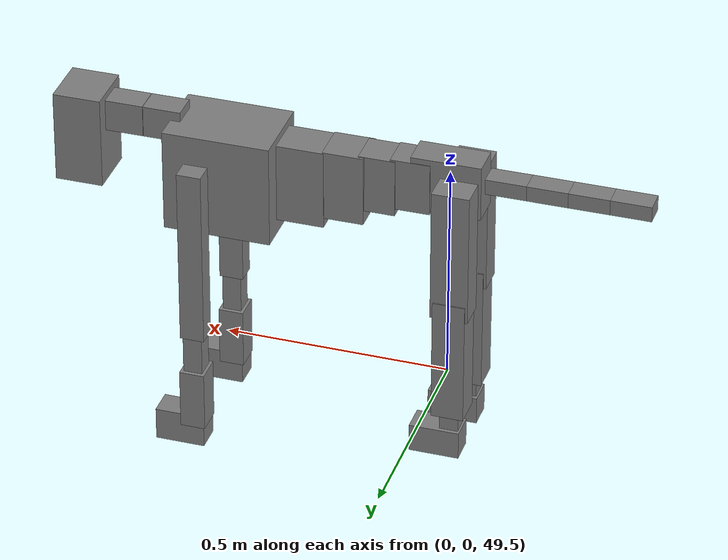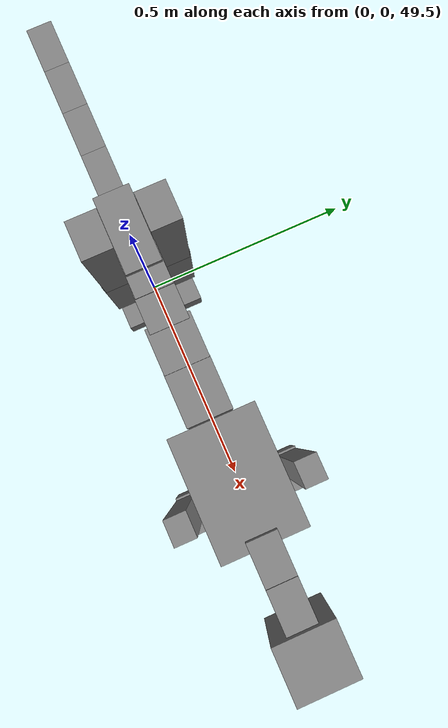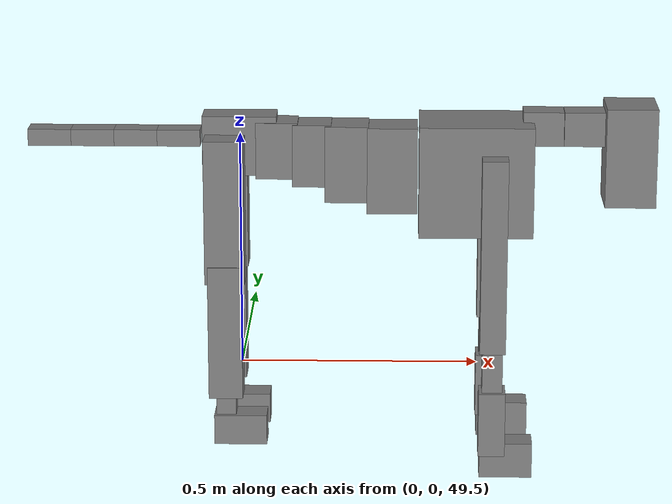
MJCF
<mujoco model="dog">

    <default>
        <joint armature="0.02" stiffness="1" damping="0.2" limited="true"/>
        <geom condim="3" friction="1 0.05 0.05" margin="0.01"/>
        <motor ctrllimited="true" ctrlrange="-1.0 1.0" forcelimited="true" gear="50"/>
    </default>

    <compiler inertiafromgeom="true" angle="radian"/>

    <option timestep="0.016" iterations="50" tolerance="1e-10" solver="Newton" jacobian="dense" cone="pyramidal"/>

    <size nconmax="20000" njmax="60000" nstack="5000000"/>
    <visual>
        <map force="0.1" zfar="30"/>
        <rgba haze="0.15 0.25 0.35 1"/>
        <quality shadowsize="2048"/>
        <global offwidth="800" offheight="800"/>
    </visual>

    <asset>
        <texture type="skybox" builtin="gradient" rgb1="0.3 0.5 0.7" rgb2="0 0 0" width="512" height="512"/>
        <texture name="texplane" type="2d" builtin="checker" rgb1=".2 .3 .4" rgb2=".1 0.15 0.2" width="512" height="512"
                 mark="cross" markrgb=".8 .8 .8"/>
        <texture name="texgeom" type="cube" builtin="flat" mark="cross" width="127" height="1278" rgb1="0.8 0.6 0.4"
                 rgb2="0.8 0.6 0.4" markrgb="1 1 1" random="0.01"/>

        <material name="matplane" reflectance="0.3" texture="texplane" texrepeat="1 1" texuniform="true"/>
        <material name="matgeom" texture="texgeom" texuniform="true" rgba="0.8 0.6 .4 1"/>
    </asset>

    <worldbody>
        <geom name="floor" pos="0 0 0" size="0 0 .25" type="plane" material="matplane" condim="3"/>

        <light directional="false" diffuse=".2 .2 .2" specular="0 0 0" pos="0 0 5" dir="0 0 -1" castshadow="false"/>
        <light mode="targetbodycom" target="torso" directional="false" diffuse=".8 .8 .8" specular="0.3 0.3 0.3"
               pos="0 0 4.0" dir="0 0 -1"/>

        <body name="root" pos="0 0 50">
            <freejoint name="root_1"/>
            <geom type="box" pos="0 0 -0.02" size="0.0774  0.0358  0.063" density="2030"/>

            <body name="spine1" pos="0.054 0 0">
                <joint name="spine1_y" axis="0 1 0" range="0 0.7" limited="true"/>
                <geom type="box" pos="0.02375 0 -0.03" size="0.04375  0.0375  0.05985" density="2030"/>

                <body name="spine2" pos="0.0612 0 0">
                    <joint name="spine2_y" axis="0 1 0" range="-0.15 0.15" limited="true"/>
                    <geom type="box" pos="0.03555  0  -0.04" size="0.04055  0.039  0.06615" density="2030"/>

                    <body name="spine3" pos="0.0730 0 0">
                        <joint name="spine3_y" axis="0 1 0" range="-0.15 0.15" limited="true"/>
                        <geom type="box" pos="0.03555  0  -0.057" size="0.04555  0.0445  0.081" density="2030"/>

                        <body name="spine4" pos="0.0780 0 0">
                            <joint name="spine4_y" axis="0 1 0" range="-0.15 0.15" limited="true"/>
                            <geom type="box" pos="0.05265  0  -0.07" size="0.05265  0.045  0.09135" density="2030"/>

                            <body name="torso" pos="0.1082 0 0">
                                <joint name="torso_y" axis="0 1 0" range="-0.15 0.15" limited="true"/>
                                <geom type="box" pos="0.11925  0  -0.085" size="0.11925  0.085  0.11745"
                                      density="2030"/>

                                <body name="neck1" pos="0.2160  0   0.0180">
                                    <joint name="neck1_y" axis="0 1 0" range="-1.2  -1" limited="true"/>
                                    <geom type="box" pos="0.0423  0  0" size="0.0423  0.03  0.036" density="2325"/>

                                    <body name="neck2" pos="0.0853  0  0">
                                        <joint name="neck2_y" axis="0 1 0" range="0.1  0" limited="true"/>
                                        <geom type="box" pos="0.0423  0  0" size="0.0423  0.03  0.036" density="2325"/>

                                        <body name="head" pos="0.0853  0  0">
                                            <joint name="head_y" axis="0 1 0" range="-0.3  -0.2" limited="true"/>
                                            <geom type="box" pos="0.0531  0  -0.055" size="0.0531  0.06  0.1044"
                                                  density="4030"/>

                                        </body>
                                    </body>
                                </body>

                                <body name="front_shoulder" pos="0.156  0   -0.0480">
                                    <joint name="front_shoulder_y" axis="0 1 0" range="-1 1.5" limited="true"/>
                                    <geom type="box" pos="0 0.13 -0.1796" size="0.0269  0.0230  0.2063" density="1158"/>
                                    <geom type="box" pos="0 -0.13 -0.1796" size="0.0269  0.0230  0.2063"
                                          density="1158"/>

                                    <body name="front_elbow" pos="0  0  -0.3593">
                                        <joint name="front_elbow_y" axis="0 1 0" range="-2 0" limited="true"/>
                                        <geom type="box" pos="0 0.13 -0.0622" size="0.0212  0.0216  0.0622"
                                              density="1081"/>
                                        <geom type="box" pos="0 -0.13 -0.0622" size="0.0212  0.0216  0.0622"
                                              density="1081"/>

                                        <body name="front_wrist" pos="0  0  -0.1245">
                                            <joint name="front_wrist_y" axis="0 1 0" range="-0.2 0" limited="true"/>
                                            <geom type="box" pos="0 0.13 -0.0555" size="0.0278  0.0308  0.0687"
                                                  density="1664"/>
                                            <geom type="box" pos="0 -0.13 -0.0555" size="0.0278  0.0308  0.0687"
                                                  density="1664"/>

                                            <body name="front_finger_end" pos="0  0  -0.1110">
                                                <joint name="front_finger_y" axis="0 1 0" range="-0.4 1"
                                                       limited="true"/>
                                                <geom type="box" pos="0.0301  0.13  -0.0224"
                                                      size="0.0551  0.0301  0.0374" density="1515"/>
                                                <geom type="box" pos="0.0301  -0.13  -0.0224"
                                                      size="0.0551  0.0301  0.0374" density="1515"/>

                                            </body>

                                        </body>
                                    </body>
                                </body>

                            </body>
                        </body>
                    </body>
                </body>
            </body>

            <body name="back_hip" pos="-0.03 0 -0.018">
                <joint name="back_hip_y" axis="0 1 0" range="-1.5 0.3" limited="true"/>
                <geom type="box" pos="0 0.07 -0.1308" size="0.0415  0.0325  0.1536" density="1154"/>
                <geom type="box" pos="0 -0.07 -0.1308" size="0.0415  0.0325  0.1536" density="1154"/>

                <body name="back_knee" pos="0  0  -0.2615">
                    <joint name="back_knee_y" axis="0 1 0" range="0 2.8" limited="true"/>
                    <geom type="box" pos="0 0.07 -0.1283" size="0.0358  0.0353  0.1438" density="1227"/>
                    <geom type="box" pos="0 -0.07 -0.1283" size="0.0358  0.0353  0.1438" density="1227"/>

                    <body name="back_ankle" pos="0  0  -0.2565">
                        <joint name="back_ankle_y" axis="0 1 0" range="-2.2 0" limited="true"/>
                        <geom type="box" pos="0 0.07 -0.0352" size="0.0209  0.0209  0.0465" density="1284"/>
                        <geom type="box" pos="0 -0.07 -0.0352" size="0.0209  0.0209  0.0465" density="1284"/>

                        <body name="back_toe_end" pos="0  0  -0.0704">
                            <joint name="back_toe_y" axis="0 1 0" range="-0.4 1" limited="true"/>
                            <geom type="box" pos="0.0303  0.07  -0.0170" size="0.0556  0.0303  0.0320" density="1515"/>
                            <geom type="box" pos="0.0303  -0.07  -0.0170" size="0.0556  0.0303  0.0320" density="1515"/>

                        </body>
                    </body>
                </body>
            </body>

            <body name="tail1" pos="-0.074 0 -0.006">
                <joint name="tail1_y" axis="0 1 0" range="-0.2 0.2" limited="true"/>
                <geom type="box" pos="-0.0536  0  0" size="0.045  0.025  0.0175" density="1587"/>

                <body name="tail2" pos="-0.09 0 0">
                    <joint name="tail2_y" axis="0 1 0" range="-0.2 0.2" limited="true"/>
                    <geom type="box" pos="-0.0536  0  0" size="0.045  0.025  0.0175" density="1587"/>

                    <body name="tail3" pos="-0.09 0 0">
                        <joint name="tail3_y" axis="0 1 0" range="-0.2 0.2" limited="true"/>
                        <geom type="box" pos="-0.0536  0  0" size="0.045  0.025  0.0175" density="1587"/>

                        <body name="tail4" pos="-0.09 0 0">
                            <joint name="tail4_y" axis="0 1 0" range="-0.2 0.2" limited="true"/>
                            <geom type="box" pos="-0.0536  0  0" size="0.045  0.025  0.0175" density="1587"/>

                        </body>
                    </body>
                </body>
            </body>
        </body>
    </worldbody>

    <actuator>
        <motor joint="spine1_y" forcerange="-150 150     "/>
        <motor joint="spine2_y" forcerange="-150 150     "/>
        <motor joint="spine3_y" forcerange="-150 150     "/>
        <motor joint="spine4_y" forcerange="-150 150     "/>
        <motor joint="torso_y" forcerange="-150 150     "/>
        <motor joint="neck1_y" forcerange="-100 100       "/>
        <motor joint="neck2_y" forcerange="-100 100       "/>
        <motor joint="head_y" forcerange="-150 150       "/>
        <motor joint="front_shoulder_y" forcerange="-142.92 110.62"/>
        <motor joint="front_elbow_y" forcerange="-143.14 114.23"/>
        <motor joint="front_wrist_y" forcerange="-140.77 105.93"/>
        <motor joint="front_finger_y" forcerange="-57.71 62.66"/>
        <motor joint="back_hip_y" forcerange="-332.41 301.23"/>
        <motor joint="back_knee_y" forcerange="-337.67 376.05"/>
        <motor joint="back_angle_y" forcerange="-78.10 155.96"/>
        <motor joint="back_toe_y" forcerange="-104.41 58.37"/>
        <motor joint="tail1_y" forcerange="-50 50     "/>
        <motor joint="tail2_y" forcerange="-50 50     "/>
        <motor joint="tail3_y" forcerange="-50 50     "/>
        <motor joint="tail4_y" forcerange="-50 50     "/>
    </actuator>
</mujoco>
